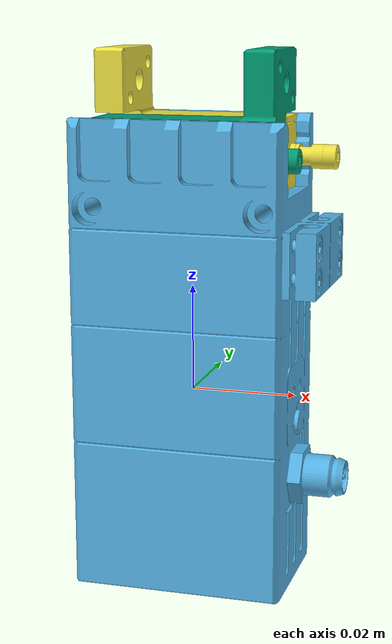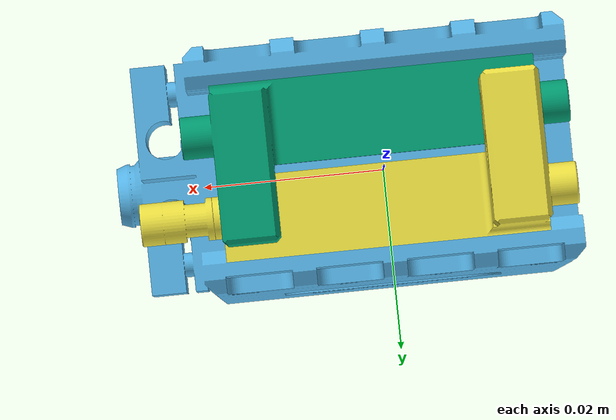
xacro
<?xml version="1.0"?>
<robot xmlns:xacro="http://www.ros.org/wiki/xacro" name="schunk_egp40">

    <xacro:include filename="$(find schunk_egp40_description)/urdf/schunk_egp40.xacro" />

    <link name="world" />

    <xacro:schunk_egp40 name="gripper" prefix="" parent="world">
        <origin xyz="0 0 0" rpy="0 0 0" />
    </xacro:schunk_egp40>

</robot>

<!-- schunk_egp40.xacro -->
<robot xmlns:xacro="http://www.ros.org/wiki/xacro" name="schunk_egp40">

    <xacro:macro name="schunk_egp40" params="
        name
        prefix
        parent
        *origin
    ">

        <xacro:include filename="inertial_macros.xacro" />

        <xacro:property name="base_diameter" value="0.065" />
        <xacro:property name="base_height" value="0.015" />
        <xacro:property name="body_length" value="0.04" />
        <xacro:property name="body_width" value="0.026" />
        <xacro:property name="body_height" value="0.0731" />
        <xacro:property name="body_height_max" value="0.0884" />
        <xacro:property name="pincer_height" value="0.0123" />
        <xacro:property name="pincer_length" value="0.040" />
        <xacro:property name="pincer_width" value="0.016" />

        <!--Main gripper-->
        <link name="${prefix}schunk_egp40_body_link">
            <visual>
                <geometry>
                    <mesh filename="package://schunk_egp40_description/meshes/schunk_egp40_body.STL" scale="0.001 0.001 0.001" />
                </geometry>
                <origin rpy="${pi/2} 0 0" xyz="${-body_length/2} ${body_width/2} ${-body_height/2}" />
            </visual>
            <collision>
                <geometry>
                    <mesh filename="package://schunk_egp40_description/meshes/schunk_egp40_body.STL" scale="0.001 0.001 0.001" />
                </geometry>
                <origin rpy="${pi/2} 0 0" xyz="${-body_length/2} ${body_width/2} ${-body_height/2}" />
            </collision>
            <xacro:inertial_box mass="0.5" x="${body_length}" y="${body_width}" z="${body_height}">
                <origin rpy="${pi/2} 0 0" xyz="${-body_length/2} ${body_width/2} ${-body_height/2}" />
            </xacro:inertial_box>
        </link>

        <!--Pincer block 1-->
        <link name="${prefix}schunk_egp40_finger_left_link">
            <visual>
                <geometry>
                    <mesh filename="package://schunk_egp40_description/meshes/schunk_finger_left.STL" scale="0.001 0.001 0.001" />
                </geometry>
                <origin rpy="${pi/2} 0 0" xyz="${-body_length/2} ${pincer_width/2} ${-body_height-pincer_height/2}" />
            </visual>
            <collision>
                <geometry>
                    <mesh filename="package://schunk_egp40_description/meshes/schunk_finger_left.STL" scale="0.001 0.001 0.001" />
                </geometry>
                <origin rpy="${pi/2} 0 0" xyz="${-body_length/2} ${pincer_width/2} ${-body_height-pincer_height/2}" />
            </collision>
            <xacro:inertial_box mass="0.1" x="${pincer_length}" y="${pincer_width}" z="${pincer_height}">
                <origin rpy="${pi/2} 0 0" xyz="${-body_length/2} ${pincer_width/2} ${-body_height-pincer_height/2}" />
            </xacro:inertial_box>
        </link>

        <!--Pincer block 2-->
        <link name="${prefix}schunk_egp40_finger_right_link">
            <visual>
                <geometry>
                    <mesh filename="package://schunk_egp40_description/meshes/schunk_finger_right.STL" scale="0.001 0.001 0.001" />
                </geometry>
                <origin rpy="${pi/2} 0 0" xyz="${-body_length/2} ${pincer_width/2} ${-body_height-pincer_height/2}" />
            </visual>
            <collision>
                <geometry>
                    <mesh filename="package://schunk_egp40_description/meshes/schunk_finger_right.STL" scale="0.001 0.001 0.001" />
                </geometry>
                <origin rpy="${pi/2} 0 0" xyz="${-body_length/2} ${pincer_width/2} ${-body_height-pincer_height/2}" />
            </collision>
            <xacro:inertial_box mass="0.1" x="${pincer_length}" y="${pincer_width}" z="${pincer_height}">
                <origin rpy="${pi/2} 0 0" xyz="${-body_length/2} ${pincer_width/2} ${-body_height-pincer_height/2}" />
            </xacro:inertial_box>
        </link>

        <!-- Virtual link for visualizytion and planning-->
        <link name="tool_tip" />

        <!-- Joints-->
        <joint name="${prefix}schunk_egp40_finger_left_joint" type="prismatic">
            <parent link="${prefix}schunk_egp40_body_link" />
            <child link="${prefix}schunk_egp40_finger_left_link" />
            <origin xyz="0.0 0.0 ${body_height/2+pincer_height/2}" rpy="0.0 0.0 0.0" />
            <!-- the motion of the pincer is along the X axis -->
            <axis xyz="1 0 0" />
            <!-- the motion of the pincer is limited to the half of the gripper body length -->
            <limit lower="${-body_length/16}" upper="${body_length/16}" velocity="100" effort="100" />
        </joint>

        <joint name="schunk_egp40_finger_right_joint" type="prismatic">
            <parent link="${prefix}schunk_egp40_body_link" />
            <child link="${prefix}schunk_egp40_finger_right_link" />
            <origin xyz="0.0 0.002 ${body_height/2+pincer_height/2}" rpy="0.0 0.0 0.0" />
            <!-- the motion of the pincer is along the X axis -->
            <axis xyz="1 0 0" />
            <!-- the motion of the pincer is limited to the half of the gripper body length -->
            <limit lower="${body_length/16}" upper="${-body_length/16}" velocity="100" effort="100" />
        </joint>

        <joint name="${prefix}schunk_egp40_tip_joint" type="fixed">
            <parent link="${prefix}schunk_egp40_body_link" />
            <child link="tool_tip" />
            <origin xyz="0 0 ${body_height_max}" rpy="0.0 0.0 0.0" />
        </joint>

        <joint
            name="schunk_egp40_base_joint"
            type="fixed"
        >
            <parent link="${parent}" />
            <child link="${prefix}schunk_egp40_body_link" />
            <xacro:insert_block name="origin" />
        </joint>

    </xacro:macro>
</robot>
